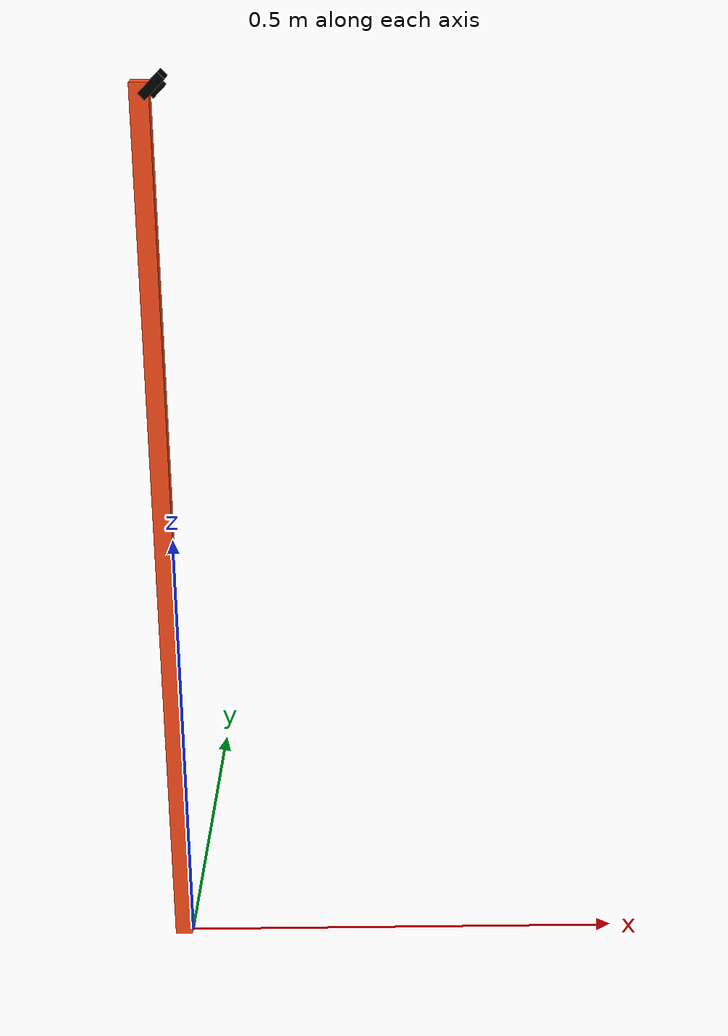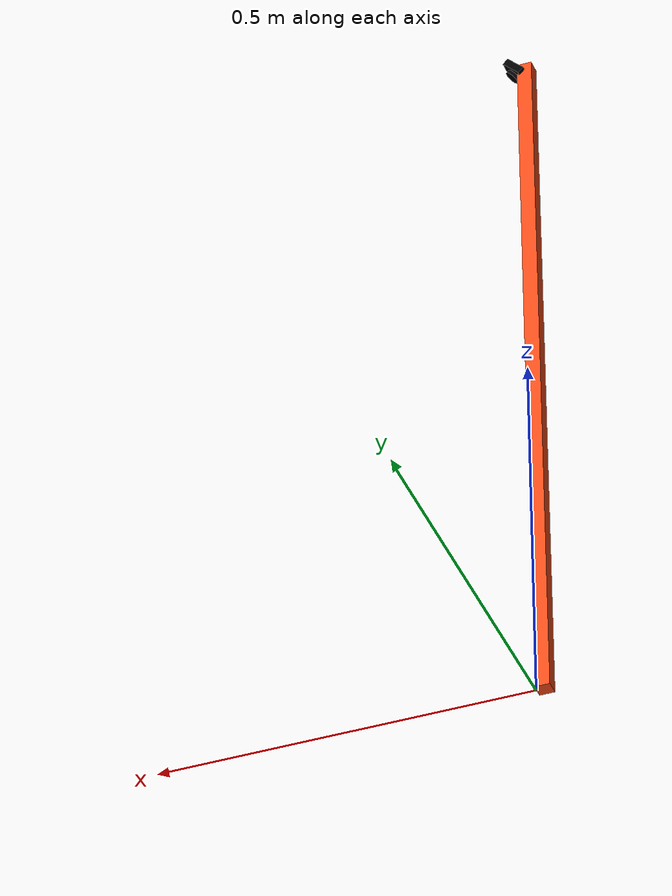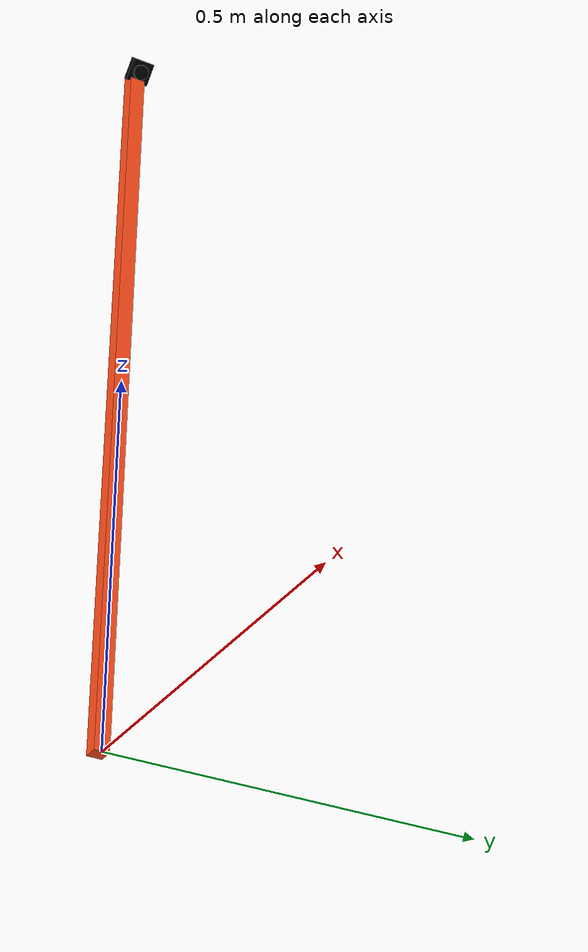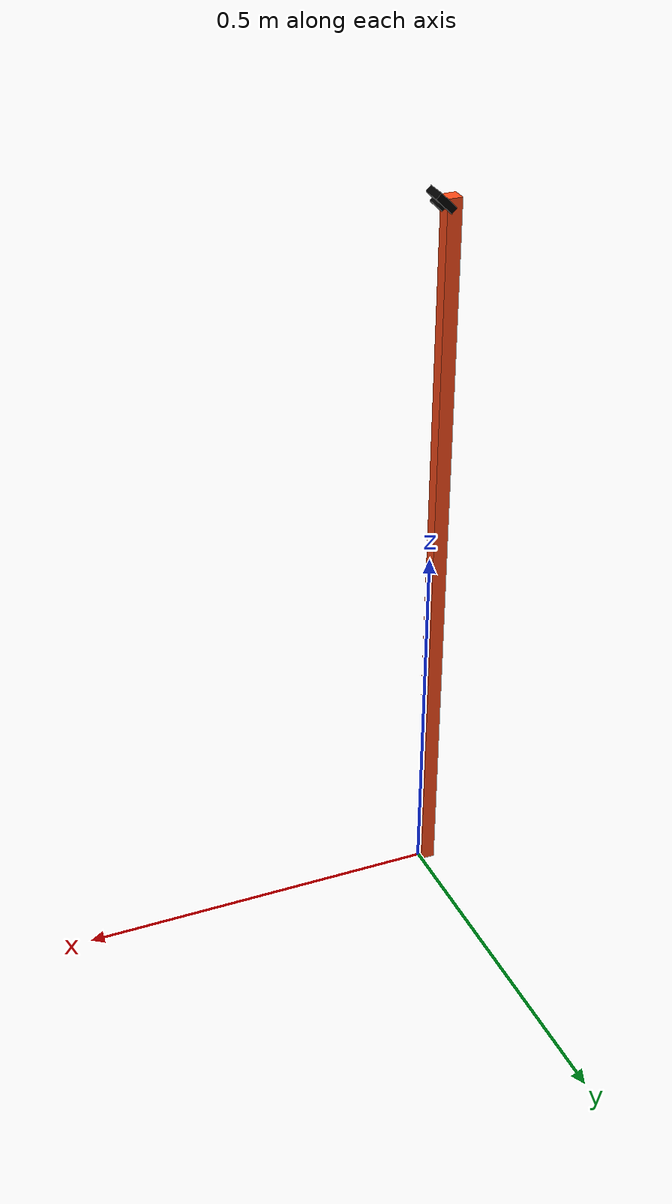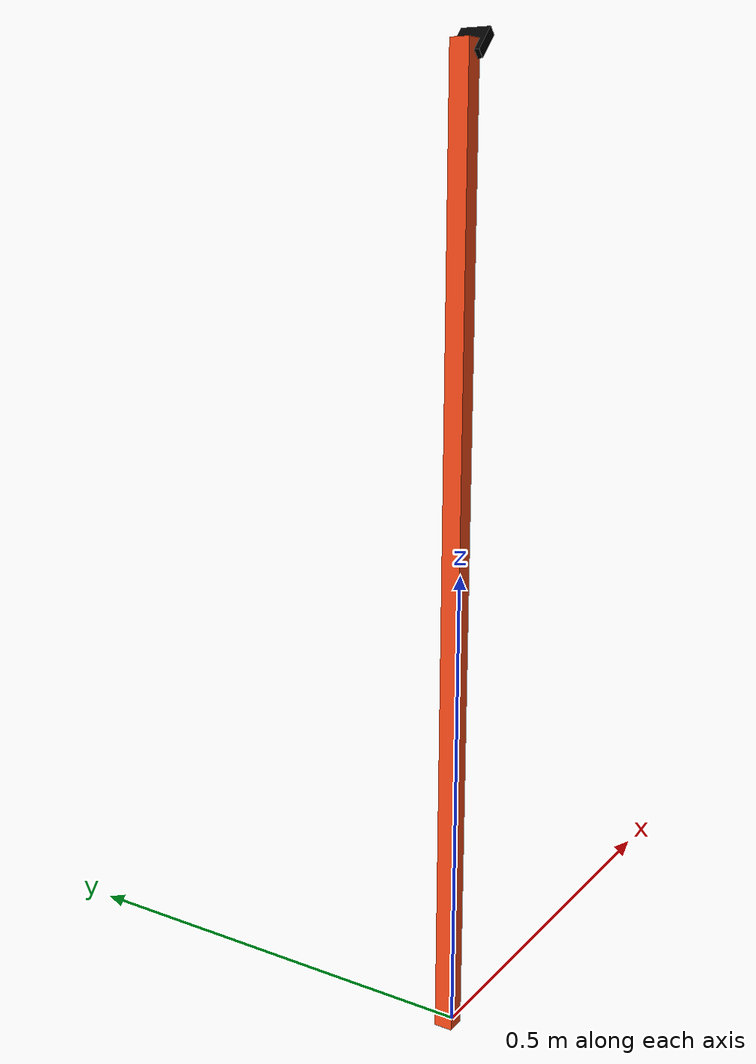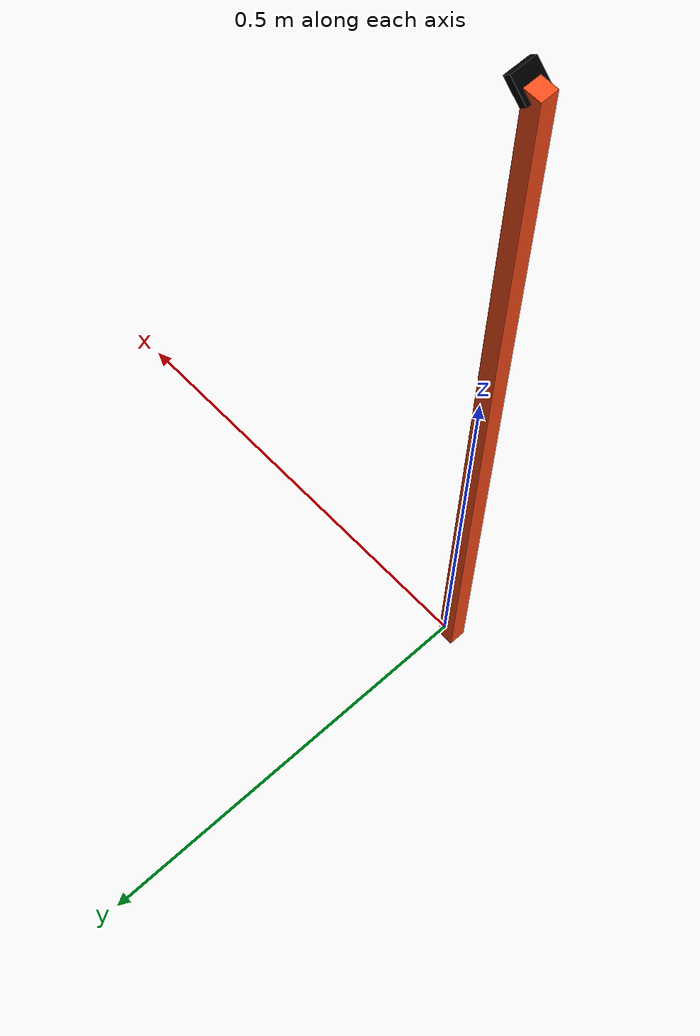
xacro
<?xml version="1.0" encoding="UTF-8"?>

<robot xmlns:xacro="http://www.ros.org/wiki/xacro"  name="box">

    <xacro:arg name="sim_mode" default="false"/>
    <xacro:arg name="tripod_a" default="0.02"/>
    <xacro:arg name="tripod_b" default="0.02"/>
    <xacro:arg name="tripod_h" default="1"/>
    <xacro:arg name="camera_a" default="0.03"/>
    <xacro:arg name="camera_h" default="0.01"/>
    <xacro:arg name="camera_cyl_r" default="0.01"/>
    <xacro:arg name="camera_cyl_h" default="0.005"/>
    <xacro:arg name="camera_tilt" default="2.3562"/>

    <xacro:include filename="inertial_macros.xacro"/>

    <material name="white">
        <color rgba="1 1 1 1" />
    </material>

    <material name="orange">
        <color rgba="1 0.3 0.1 1"/>
    </material>

    <material name="blue">
        <color rgba="0.2 0.2 1 1"/>
    </material>

    <material name="black">
        <color rgba="0 0 0 1"/>
    </material>

    <material name="red">
        <color rgba="1 0 0 1"/>
    </material>

    <!-- BASE LINK -->

    <link name="base_link">

    </link>

    <!-- BASE_FOOTPRINT LINK -->

    <joint name="base_footprint_joint" type="fixed">
        <parent link="base_link"/>
        <child link="base_footprint"/>
        <origin xyz="0 0 0" rpy="0 0 0"/>
    </joint>

    <link name="base_footprint">
    </link>

    <joint name="camera_joint" type="fixed">
        <origin xyz="0.0 0 $(arg tripod_h)" rpy="${pi} ${$(arg camera_tilt) - pi/2} 0"/>
        <parent link="tripod_link"/>
        <child link="camera_link"/>
    </joint>

    <link name="camera_link">
        <visual>
            <origin xyz="${$(arg camera_h)/2} 0 0" rpy="0 0 0"/>
            <geometry>
                <box size="$(arg camera_h) $(arg camera_a) $(arg camera_a)"/>
            </geometry>
            <material name="black"/>
        </visual>
        <visual>
            <origin xyz="${$(arg camera_h) + ($(arg camera_cyl_h)/2)} 0 0" rpy="0 ${pi/2} 0"/>
            <geometry>
                <cylinder radius="$(arg camera_cyl_r)" length="$(arg camera_cyl_h)"/>
            </geometry>
            <material name="black"/>
        </visual>

        <collision>
            <origin xyz="${($(arg camera_h) + $(arg camera_cyl_h))/2}" rpy="0 0 0"/>
            <geometry>
                <box size="${$(arg camera_h) + $(arg camera_cyl_h)} $(arg camera_a) $(arg camera_a)"/>
            </geometry>
        </collision>
    </link>
    <gazebo reference="camera_link">
        <material>Gazebo/Black</material>
    </gazebo>

    <joint name="tripod_joint" type="fixed">
        <parent link="base_link"/>
        <child link="tripod_link"/>
    </joint>

    <link name="tripod_link">
        <visual>
            <origin xyz="${-$(arg tripod_a)/2} 0 ${$(arg tripod_h)/2}"/>
            <geometry>
                <box size="$(arg tripod_a) $(arg tripod_b) $(arg tripod_h)"/>
            </geometry>
            <material name="orange"/>
        </visual>
        <collision>
            <origin xyz="${-$(arg tripod_a)/2} 0 ${$(arg tripod_h)/2}"/>
            <geometry>
                <box size="$(arg tripod_a) $(arg tripod_b) $(arg tripod_h)"/>
            </geometry>
        </collision>
        <xacro:inertial_box mass="0.1" x="$(arg tripod_a)" y="$(arg tripod_b)" z="$(arg tripod_h)">
            <origin xyz="${-$(arg tripod_a)/2} 0 ${$(arg tripod_h)/2}" rpy="0 0 0"/>
        </xacro:inertial_box>
    </link>
    <gazebo reference="tripod_link">
        <material>Gazebo/Orange</material>
    </gazebo>

    <gazebo reference="camera_link">
        <material>Gazebo/Black</material>

        <sensor name="camera" type="camera">
            <pose> 0 0 0 0 0 0 </pose>
            <visualize>true</visualize>
            <update_rate>30</update_rate>
            <camera>
                <horizontal_fov>2.0944</horizontal_fov>
                <image>
                    <format>R8G8B8</format>
                    <width>640</width>
                    <height>480</height>
                </image>
                <clip>
                    <near>0.05</near>
                    <far>8.0</far>
                </clip>
                <lens>
                    <intrinsics>
                            <fx>400.50390742</fx>
                            <fy>401.0784034</fy>
                            <cx>312.79068201</cx>
                            <cy>241.10000571</cy>
                            <s>0</s>
                    </intrinsics>
                </lens>
            </camera>
            <plugin name="camera_controller" filename="libgazebo_ros_camera.so">
                <alwaysOn>true</alwaysOn>
                <updateRate>30.0</updateRate>
                <cameraName>my_robot/camera1</cameraName>
                <imageTopicName>image_raw</imageTopicName>
                <cameraInfoTopicName>camera_info</cameraInfoTopicName>
                <frameName>camera_link_optical</frameName>
                <distortionK1>-0.41357183</distortionK1>
                <distortionK2>0.33531083</distortionK2>
                <distortionT1>0.00206728</distortionT1>
                <distortionT2>-0.00143632</distortionT2>
                <distortionK3>-0.26233402</distortionK3>
            </plugin>
        </sensor>
    </gazebo>
</robot>
